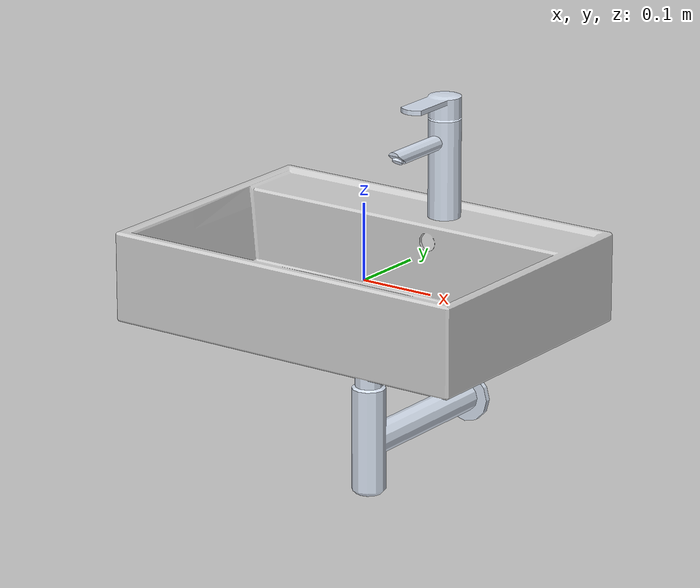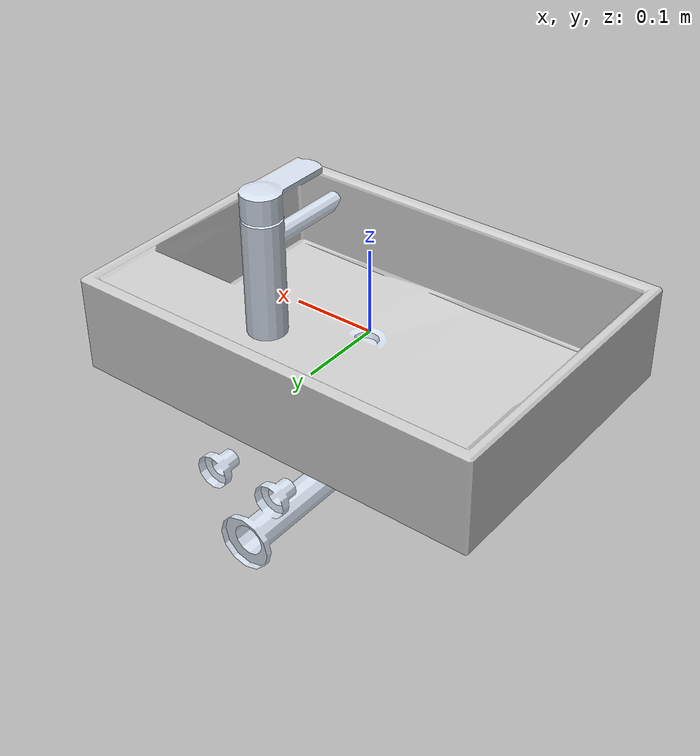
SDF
<?xml version='1.0'?>
<sdf version="1.4">
	<model name="sink1">
		<static>1</static>
		<link name="link">
			<visual name="mesh">
				<geometry>
					<mesh>
						<uri>model://meshes/sink1.dae</uri>
					</mesh>
				</geometry>
			</visual>
			<collision name="collider">
				<pose>0 0 0 0 0 0</pose>
				<geometry>
					<box>
						<size>0.5 0.36 0.116</size>
					</box>
				</geometry>
			</collision>
		</link>
	</model>
</sdf>
